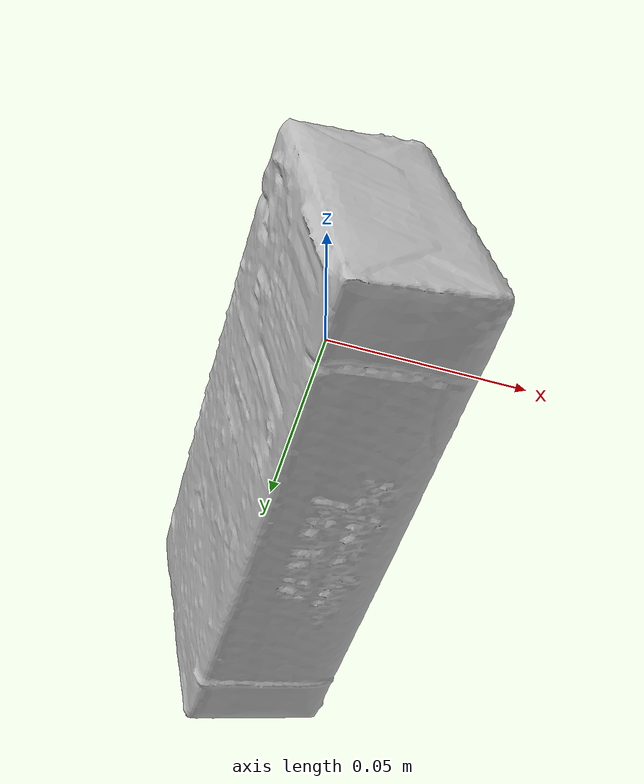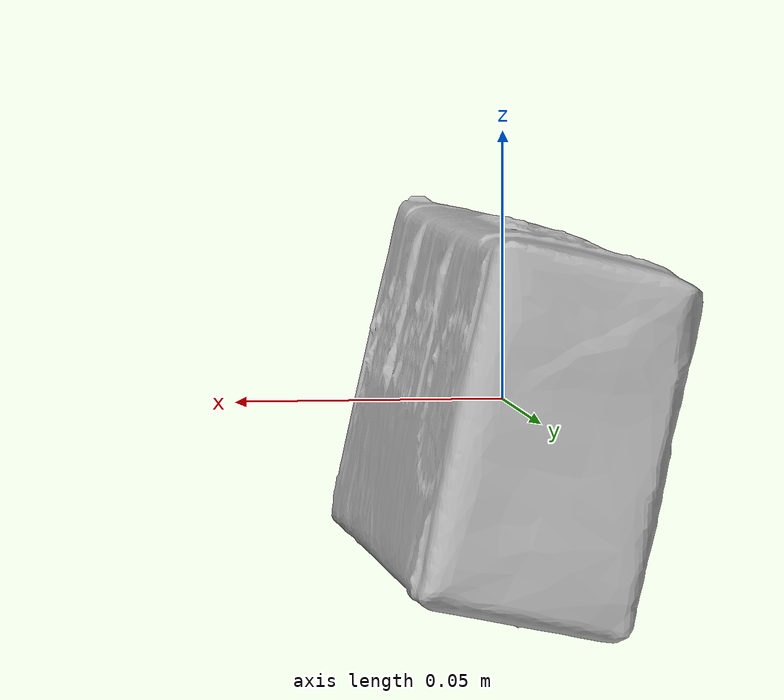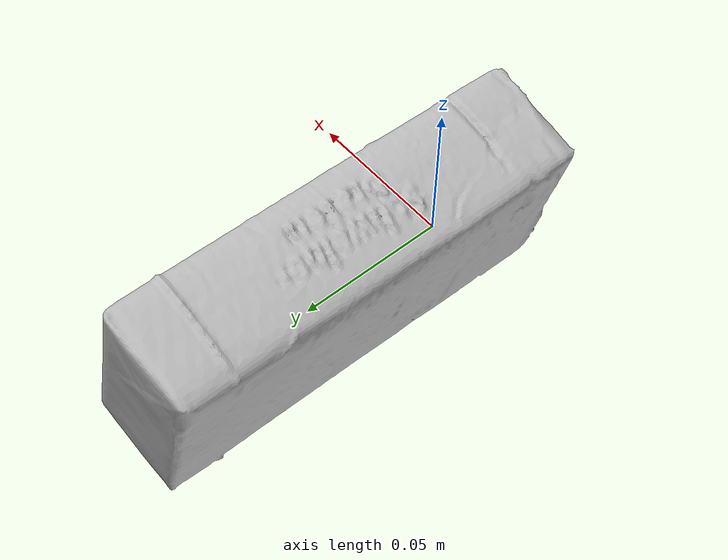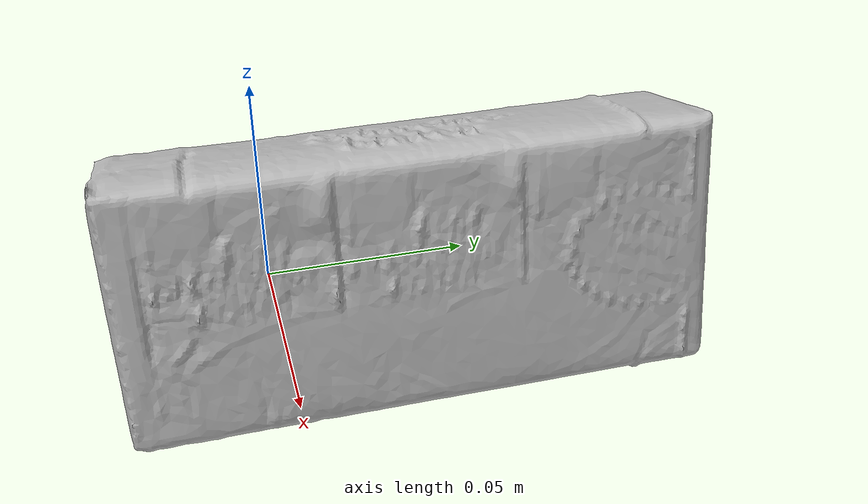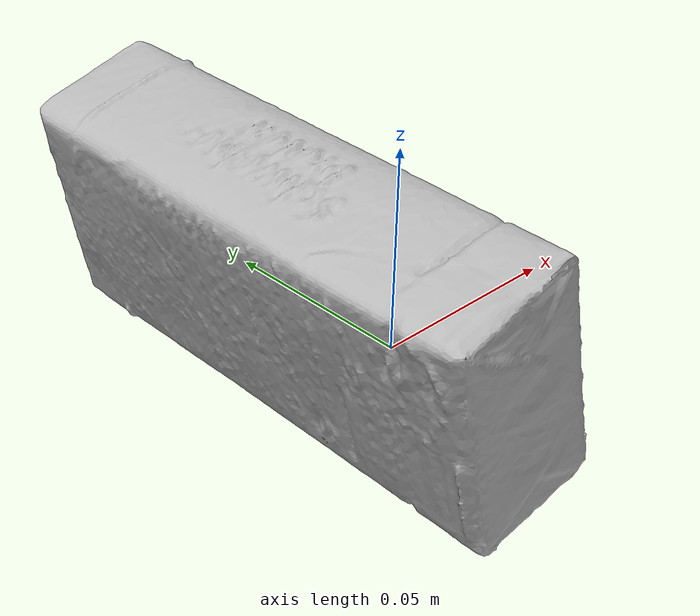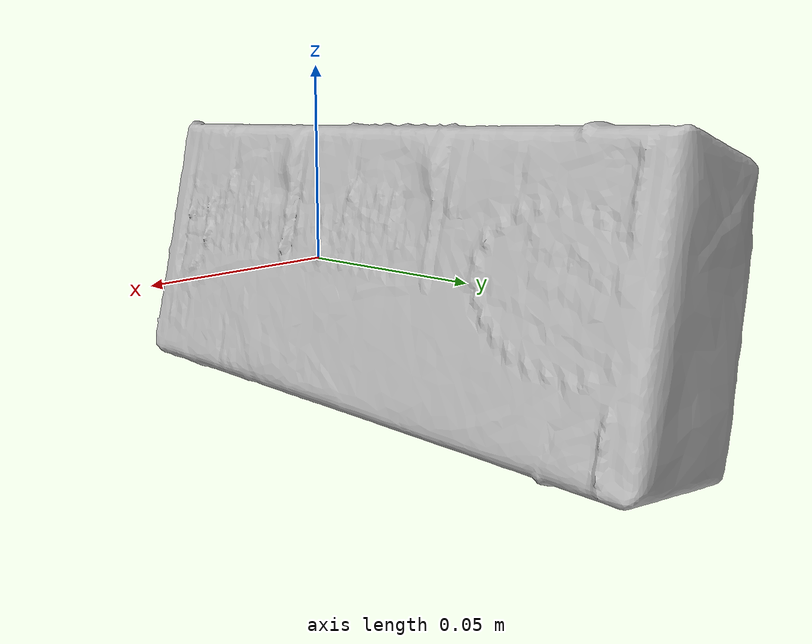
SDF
<?xml version='1.0'?>
<sdf version="1.4">
  <model name="InstantSauce2">
    <static>false</static>
    <link name="link">
      <inertial>
        <pose>0.004066168112972901 0.035982482808112684 0.0013615047170053257 -1.5788695893389153 0.22236536743722476 3.1312567099251396</pose>
        <mass>0.03863217866765492</mass>
        <inertia>
          <ixx>8.144880053158922e-05</ixx>
          <ixy>3.781151108642298e-21</ixy>
          <ixz>2.2047675064546575e-21</ixz>
          <iyy>7.284560929981436e-05</iyy>
          <iyz>1.0175468959874014e-20</iyz>
          <izz>1.8766006783587316e-05</izz>
        </inertia>
      </inertial>
      <collision name="collision">
        <geometry>
          <mesh>
            <!-- Use a downsampled mesh for collisions -->
            <uri>model:///InstantSauce2/InstantSauce2_250_collision.obj</uri>
	        </mesh>
        </geometry>
        <surface>
      </surface>
      </collision>
      <visual name="visual">
        <geometry>
          <mesh>
            <uri>model:///InstantSauce2/InstantSauce2_25k_tex.obj</uri>
	        </mesh>
        </geometry>
        <material>
          <script>
            <uri>model:///InstantSauce2/InstantSauce2.material</uri>
            <name>InstantSauce2</name>
          </script>
        </material>
      </visual>
    </link>
  </model>
</sdf>
